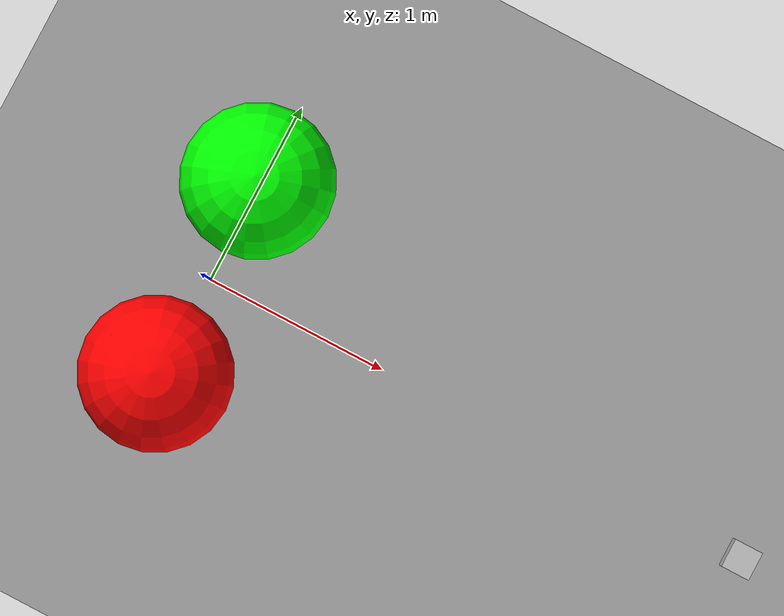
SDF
<?xml version="1.0"?>
<sdf version="1.7">
  <world name="apple_rgbd_world">
    <physics name="1ms" type="ignored">
      <max_step_size>0.001</max_step_size>
      <real_time_factor>1.0</real_time_factor>
    </physics>

    <plugin
      filename="ignition-gazebo-physics-system"
      name="gz::sim::systems::Physics"/>

    <plugin
      filename="ignition-gazebo-sensors-system"
      name="gz::sim::systems::Sensors">
      <render_engine>ogre</render_engine>
    </plugin>

    <plugin
      filename="ignition-gazebo-user-commands-system"
      name="gz::sim::systems::UserCommands"/>

    <plugin
      filename="ignition-gazebo-scene-broadcaster-system"
      name="gz::sim::systems::SceneBroadcaster"/>

    <scene>
      <ambient>0.8 0.8 0.8</ambient>
      <background>0.7 0.7 0.7</background>
      <grid>true</grid>
    </scene>

    <light type="directional" name="sun">
      <pose>0 0 10 0 0 0</pose>
      <diffuse>0.8 0.8 0.8 1</diffuse>
      <specular>0.2 0.2 0.2 1</specular>
      <direction>-0.5 0.1 -0.9</direction>
    </light>

    <model name="ground_plane">
      <static>true</static>

      <link name="link">
        <collision name="collision">
          <geometry>
            <box>
              <size>10 10 0.1</size>
            </box>
          </geometry>
        </collision>

        <visual name="visual">
          <geometry>
            <box>
              <size>10 10 0.1</size>
            </box>
          </geometry>

          <material>
            <ambient>0.6 0.6 0.6 1</ambient>
            <diffuse>0.6 0.6 0.6 1</diffuse>
          </material>
        </visual>
      </link>
    </model>

    <model name="ripe_apple">
      <static>true</static>
      <pose>0 -0.55 0.4 0 0 0</pose>

      <link name="link">
        <collision name="collision">
          <geometry>
            <sphere>
              <radius>0.4</radius>
            </sphere>
          </geometry>
        </collision>

        <visual name="visual">
          <geometry>
            <sphere>
              <radius>0.4</radius>
            </sphere>
          </geometry>

          <material>
            <ambient>1 0 0 1</ambient>
            <diffuse>1 0 0 1</diffuse>
          </material>
        </visual>
      </link>
    </model>

    <model name="unripe_apple">
      <static>true</static>
      <pose>0 0.55 0.4 0 0 0</pose>

      <link name="link">
        <collision name="collision">
          <geometry>
            <sphere>
              <radius>0.4</radius>
            </sphere>
          </geometry>
        </collision>

        <visual name="visual">
          <geometry>
            <sphere>
              <radius>0.4</radius>
            </sphere>
          </geometry>

          <material>
            <ambient>0 1 0 1</ambient>
            <diffuse>0 1 0 1</diffuse>
          </material>
        </visual>
      </link>
    </model>

    <model name="rgbd_camera">
      <static>true</static>
      <pose>3.0 0 0.8 0 0 3.14159</pose>

      <link name="camera_link">
        <visual name="camera_visual">
          <geometry>
            <box>
              <size>0.15 0.15 0.15</size>
            </box>
          </geometry>
        </visual>

        <sensor name="rgbd_sensor" type="rgbd_camera">
          <camera>
            <horizontal_fov>1.047</horizontal_fov>

            <image>
              <width>320</width>
              <height>240</height>
            </image>

            <clip>
              <near>0.1</near>
              <far>10.0</far>
            </clip>
          </camera>

          <always_on>true</always_on>
          <update_rate>30</update_rate>
          <visualize>true</visualize>
          <topic>rgbd_camera</topic>
        </sensor>
      </link>
    </model>
  </world>
</sdf>
